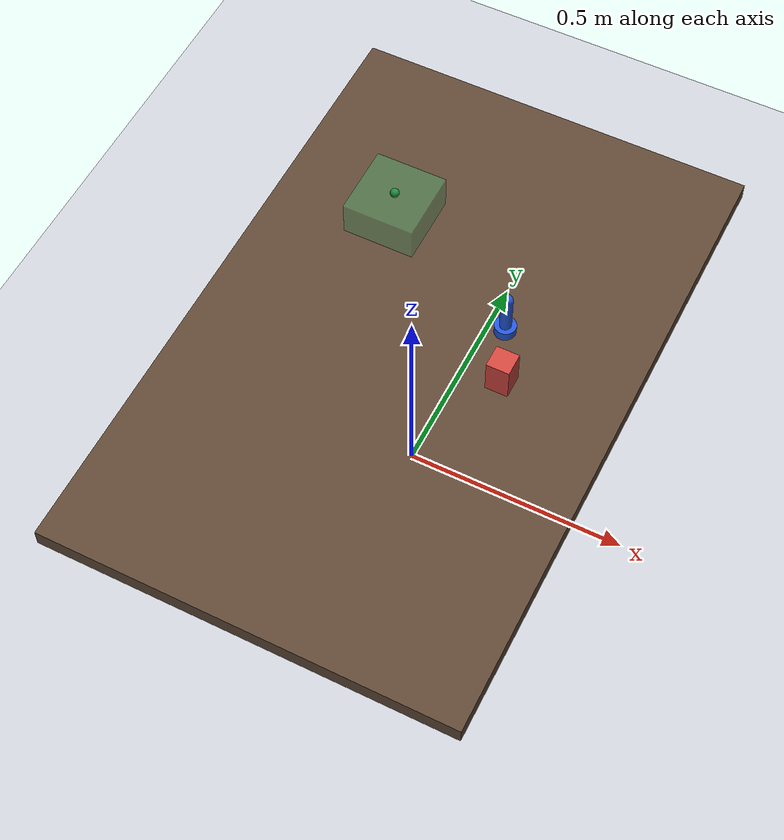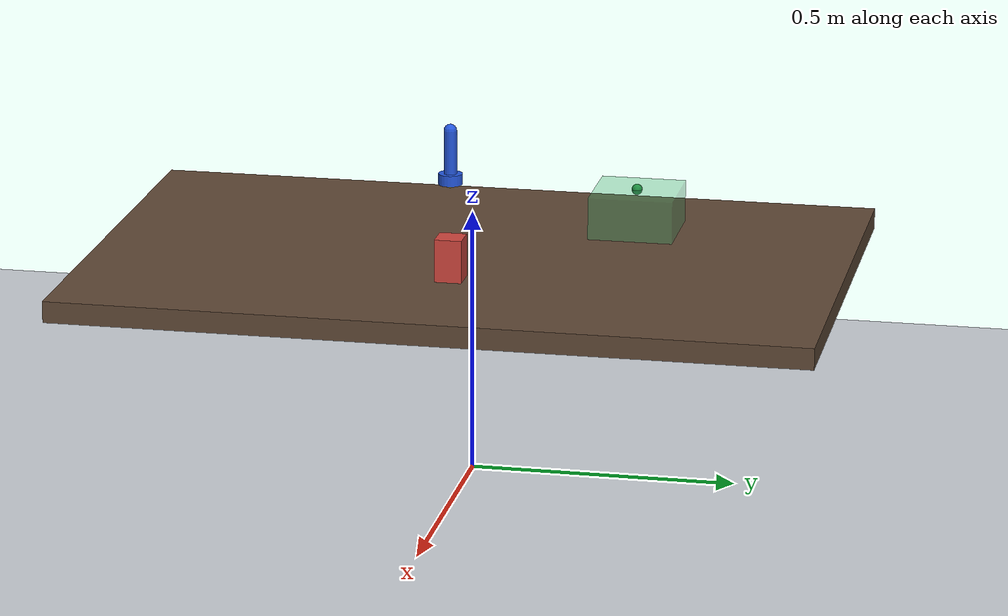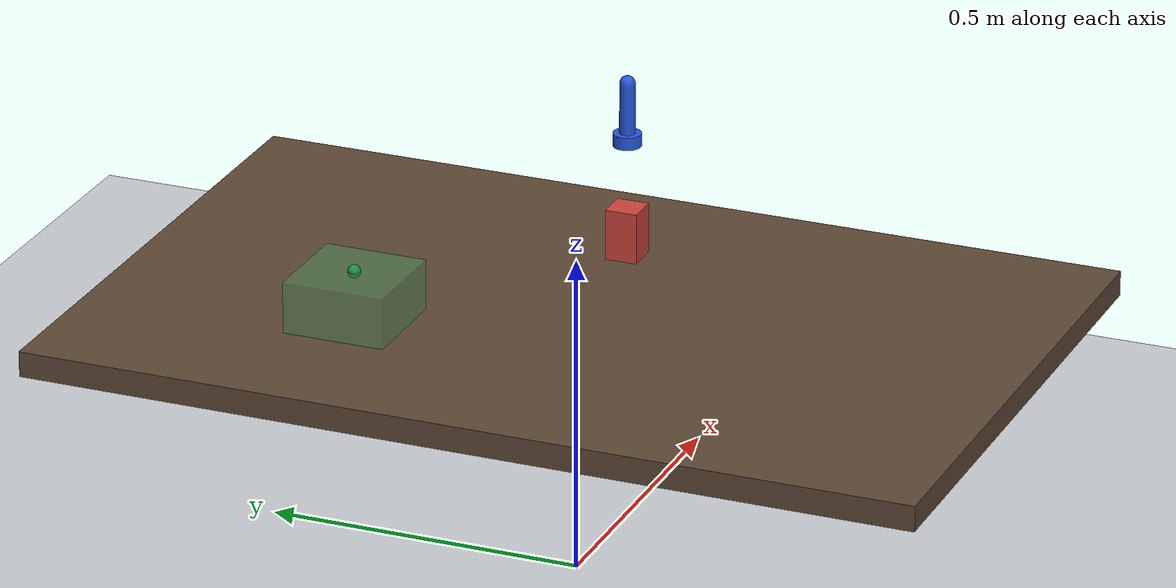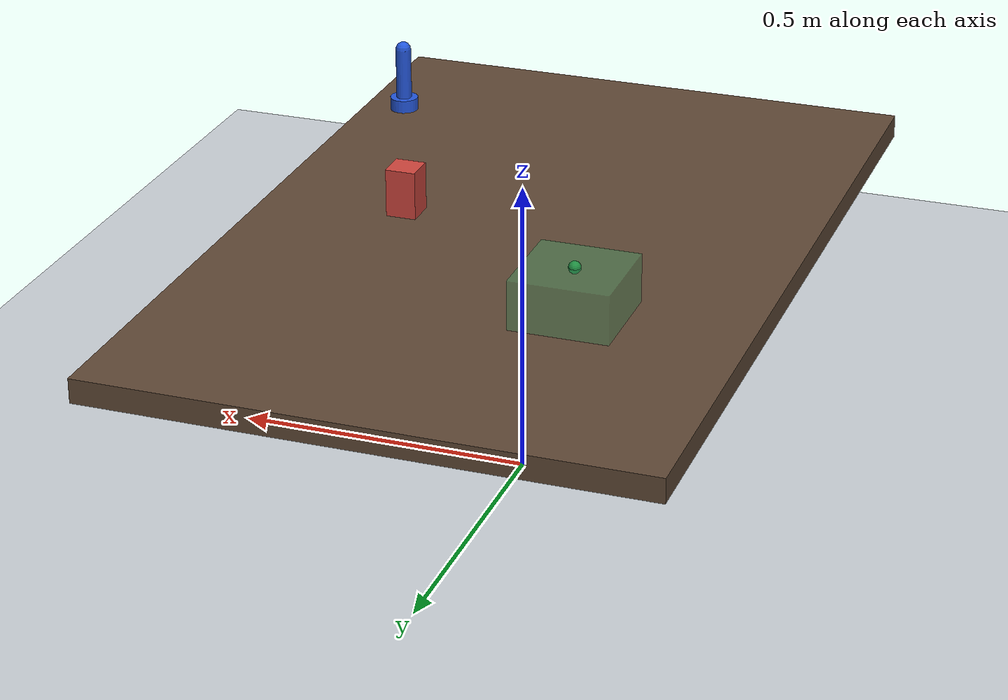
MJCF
<mujoco model="basic_pick_scene">
  <compiler angle="radian" autolimits="true"/>

  <option timestep="0.002" gravity="0 0 -9.81"/>

  <visual>
    <headlight ambient="0.35 0.35 0.35" diffuse="0.75 0.75 0.75" specular="0.15 0.15 0.15"/>
    <rgba haze="0.15 0.2 0.25 1"/>
    <map znear="0.01" zfar="20"/>
  </visual>

  <asset>
    <texture name="sky" type="skybox" builtin="gradient" rgb1="0.92 0.97 1.0" rgb2="0.65 0.78 0.9" width="256" height="256"/>
    <texture name="grid" type="2d" builtin="checker" rgb1="0.84 0.86 0.88" rgb2="0.74 0.76 0.79" width="512" height="512"/>
    <material name="floor_mat" texture="grid" texrepeat="4 4" reflectance="0.05"/>
    <material name="table_mat" rgba="0.37 0.28 0.21 1"/>
    <material name="object_mat" rgba="0.81 0.27 0.24 1"/>
    <material name="bin_mat" rgba="0.23 0.72 0.43 0.35"/>
    <material name="cup_mat" rgba="0.14 0.34 0.86 1"/>
  </asset>

  <default>
    <geom friction="0.8 0.1 0.05" condim="4" solimp="0.95 0.99 0.001" solref="0.004 1"/>
  </default>

  <worldbody>
    <light pos="0 0 2.2" dir="0 0 -1" diffuse="1 1 1"/>
    <light pos="1.2 -1.2 1.5" dir="-1 1 -1" diffuse="0.6 0.6 0.6"/>

    <geom name="floor" type="plane" size="2 2 0.1" material="floor_mat"/>

    <body name="table" pos="0 0 0.4">
      <geom name="table_top" type="box" size="0.45 0.7 0.02" material="table_mat"/>
    </body>

    <body name="pick_object" pos="0.2 0.0 0.47">
      <freejoint/>
      <geom name="box" type="box" size="0.025 0.025 0.04" mass="0.25" material="object_mat"/>
    </body>

    <body name="target_bin" pos="-0.18 0.28 0.47">
      <geom name="bin_marker" type="box" size="0.08 0.08 0.04" contype="0" conaffinity="0" material="bin_mat"/>
      <site name="target_center" pos="0 0 0.04" type="sphere" size="0.01" rgba="0.12 0.55 0.25 1"/>
    </body>

    <body name="suction_tool" pos="0.2 0.0 0.66">
      <geom name="tool_mount" type="capsule" fromto="0 0 0.05 0 0 -0.03" size="0.012" material="cup_mat"/>
      <geom name="suction_cup" type="cylinder" pos="0 0 -0.04" size="0.022 0.01" material="cup_mat"/>
      <site name="tcp" pos="0 0 -0.05" type="sphere" size="0.007" rgba="1 1 0.1 1"/>
    </body>

    <camera name="overview" pos="1.05 -1.1 0.95" xyaxes="0.72 0.69 0 -0.34 0.35 0.87"/>
    <camera name="side" pos="0.1 -1.35 0.8" xyaxes="1 0 0 0 0.5 0.87"/>
  </worldbody>
</mujoco>
